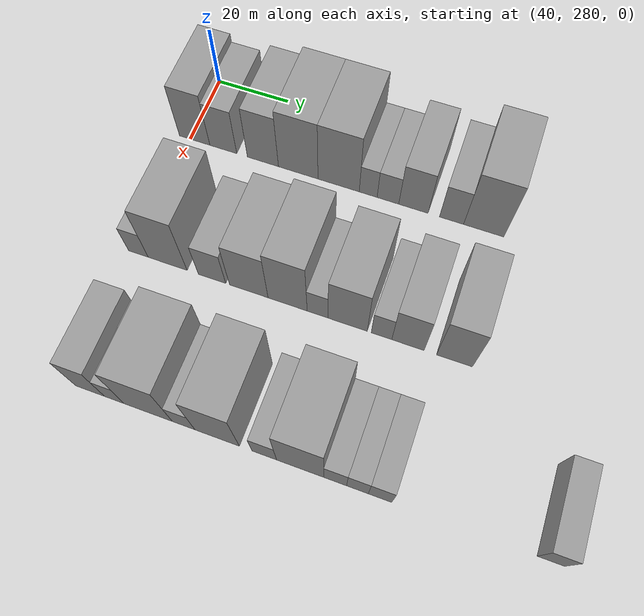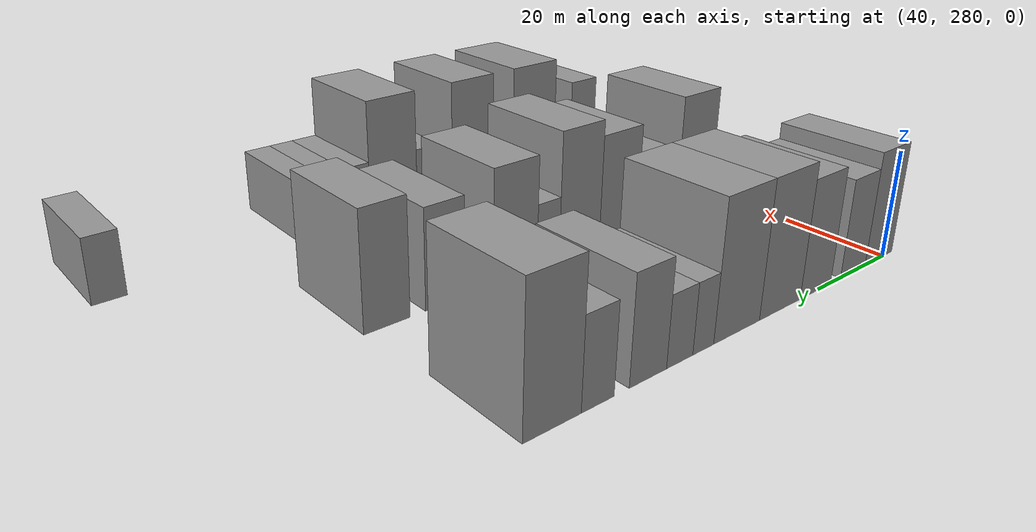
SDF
<sdf version="1.6">
 <world name="default">
  <model name="building_74">
   <static>1</static>
   <pose>50.0000 281.3821 0 0.000000 0.000000 0.000000</pose>
   <link name="link">
    <pose>0 0 10.50 0 0 0</pose>
    <collision name="collision"><geometry><box><size>20.0000 8.7251 21.0000</size></box></geometry></collision>
    <visual name="visual">
     <cast_shadows>0</cast_shadows>
     <geometry><box><size>20.0000 8.7251 21.0000</size></box></geometry>
     <material>
      <script>
       <uri>model://grey_wall/materials/scripts</uri>
       <uri>model://grey_wall/materials/textures</uri>
       <name>vrc/grey_wall</name>
      </script>
     </material>
    </visual>
   </link>
  </model>
  <model name="building_75">
   <static>1</static>
   <pose>50.0000 289.5670 0 0.000000 0.000000 0.000000</pose>
   <link name="link">
    <pose>0 0 9.00 0 0 0</pose>
    <collision name="collision"><geometry><box><size>20.0000 7.6448 18.0000</size></box></geometry></collision>
    <visual name="visual">
     <cast_shadows>0</cast_shadows>
     <geometry><box><size>20.0000 7.6448 18.0000</size></box></geometry>
     <material>
      <script>
       <uri>model://grey_wall/materials/scripts</uri>
       <uri>model://grey_wall/materials/textures</uri>
       <name>vrc/grey_wall</name>
      </script>
     </material>
    </visual>
   </link>
  </model>
  <model name="building_76">
   <static>1</static>
   <pose>50.0000 300.7373 0 0.000000 0.000000 0.000000</pose>
   <link name="link">
    <pose>0 0 10.50 0 0 0</pose>
    <collision name="collision"><geometry><box><size>20.0000 8.6957 21.0000</size></box></geometry></collision>
    <visual name="visual">
     <cast_shadows>0</cast_shadows>
     <geometry><box><size>20.0000 8.6957 21.0000</size></box></geometry>
     <material>
      <script>
       <uri>model://grey_wall/materials/scripts</uri>
       <uri>model://grey_wall/materials/textures</uri>
       <name>vrc/grey_wall</name>
      </script>
     </material>
    </visual>
   </link>
  </model>
  <model name="building_77">
   <static>1</static>
   <pose>50.0000 310.5409 0 0.000000 0.000000 0.000000</pose>
   <link name="link">
    <pose>0 0 12.00 0 0 0</pose>
    <collision name="collision"><geometry><box><size>20.0000 10.9115 24.0000</size></box></geometry></collision>
    <visual name="visual">
     <cast_shadows>0</cast_shadows>
     <geometry><box><size>20.0000 10.9115 24.0000</size></box></geometry>
     <material>
      <script>
       <uri>model://grey_wall/materials/scripts</uri>
       <uri>model://grey_wall/materials/textures</uri>
       <name>vrc/grey_wall</name>
      </script>
     </material>
    </visual>
   </link>
  </model>
  <model name="building_78">
   <static>1</static>
   <pose>50.0000 321.6092 0 0.000000 0.000000 0.000000</pose>
   <link name="link">
    <pose>0 0 12.00 0 0 0</pose>
    <collision name="collision"><geometry><box><size>20.0000 11.2251 24.0000</size></box></geometry></collision>
    <visual name="visual">
     <cast_shadows>0</cast_shadows>
     <geometry><box><size>20.0000 11.2251 24.0000</size></box></geometry>
     <material>
      <script>
       <uri>model://grey_wall/materials/scripts</uri>
       <uri>model://grey_wall/materials/textures</uri>
       <name>vrc/grey_wall</name>
      </script>
     </material>
    </visual>
   </link>
  </model>
  <model name="building_79">
   <static>1</static>
   <pose>50.0000 329.6249 0 0.000000 0.000000 0.000000</pose>
   <link name="link">
    <pose>0 0 6.00 0 0 0</pose>
    <collision name="collision"><geometry><box><size>20.0000 4.8063 12.0000</size></box></geometry></collision>
    <visual name="visual">
     <cast_shadows>0</cast_shadows>
     <geometry><box><size>20.0000 4.8063 12.0000</size></box></geometry>
     <material>
      <script>
       <uri>model://grey_wall/materials/scripts</uri>
       <uri>model://grey_wall/materials/textures</uri>
       <name>vrc/grey_wall</name>
      </script>
     </material>
    </visual>
   </link>
  </model>
  <model name="building_80">
   <static>1</static>
   <pose>50.0000 334.9151 0 0.000000 0.000000 0.000000</pose>
   <link name="link">
    <pose>0 0 6.00 0 0 0</pose>
    <collision name="collision"><geometry><box><size>20.0000 5.7741 12.0000</size></box></geometry></collision>
    <visual name="visual">
     <cast_shadows>0</cast_shadows>
     <geometry><box><size>20.0000 5.7741 12.0000</size></box></geometry>
     <material>
      <script>
       <uri>model://grey_wall/materials/scripts</uri>
       <uri>model://grey_wall/materials/textures</uri>
       <name>vrc/grey_wall</name>
      </script>
     </material>
    </visual>
   </link>
  </model>
  <model name="building_81">
   <static>1</static>
   <pose>50.0000 341.6799 0 0.000000 0.000000 0.000000</pose>
   <link name="link">
    <pose>0 0 9.00 0 0 0</pose>
    <collision name="collision"><geometry><box><size>20.0000 7.7554 18.0000</size></box></geometry></collision>
    <visual name="visual">
     <cast_shadows>0</cast_shadows>
     <geometry><box><size>20.0000 7.7554 18.0000</size></box></geometry>
     <material>
      <script>
       <uri>model://grey_wall/materials/scripts</uri>
       <uri>model://grey_wall/materials/textures</uri>
       <name>vrc/grey_wall</name>
      </script>
     </material>
    </visual>
   </link>
  </model>
  <model name="building_82">
   <static>1</static>
   <pose>50.0000 351.6924 0 0.000000 0.000000 0.000000</pose>
   <link name="link">
    <pose>0 0 7.50 0 0 0</pose>
    <collision name="collision"><geometry><box><size>20.0000 6.2697 15.0000</size></box></geometry></collision>
    <visual name="visual">
     <cast_shadows>0</cast_shadows>
     <geometry><box><size>20.0000 6.2697 15.0000</size></box></geometry>
     <material>
      <script>
       <uri>model://grey_wall/materials/scripts</uri>
       <uri>model://grey_wall/materials/textures</uri>
       <name>vrc/grey_wall</name>
      </script>
     </material>
    </visual>
   </link>
  </model>
  <model name="building_83">
   <static>1</static>
   <pose>50.0000 360.0272 0 0.000000 0.000000 0.000000</pose>
   <link name="link">
    <pose>0 0 12.00 0 0 0</pose>
    <collision name="collision"><geometry><box><size>20.0000 10.4000 24.0000</size></box></geometry></collision>
    <visual name="visual">
     <cast_shadows>0</cast_shadows>
     <geometry><box><size>20.0000 10.4000 24.0000</size></box></geometry>
     <material>
      <script>
       <uri>model://grey_wall/materials/scripts</uri>
       <uri>model://grey_wall/materials/textures</uri>
       <name>vrc/grey_wall</name>
      </script>
     </material>
    </visual>
   </link>
  </model>
  <model name="building_157">
   <static>1</static>
   <pose>85.0000 281.6886 0 0.000000 0.000000 0.000000</pose>
   <link name="link">
    <pose>0 0 6.00 0 0 0</pose>
    <collision name="collision"><geometry><box><size>20.0000 5.3297 12.0000</size></box></geometry></collision>
    <visual name="visual">
     <cast_shadows>0</cast_shadows>
     <geometry><box><size>20.0000 5.3297 12.0000</size></box></geometry>
     <material>
      <script>
       <uri>model://grey_wall/materials/scripts</uri>
       <uri>model://grey_wall/materials/textures</uri>
       <name>vrc/grey_wall</name>
      </script>
     </material>
    </visual>
   </link>
  </model>
  <model name="building_158">
   <static>1</static>
   <pose>85.0000 289.5676 0 0.000000 0.000000 0.000000</pose>
   <link name="link">
    <pose>0 0 12.00 0 0 0</pose>
    <collision name="collision"><geometry><box><size>20.0000 10.4283 24.0000</size></box></geometry></collision>
    <visual name="visual">
     <cast_shadows>0</cast_shadows>
     <geometry><box><size>20.0000 10.4283 24.0000</size></box></geometry>
     <material>
      <script>
       <uri>model://grey_wall/materials/scripts</uri>
       <uri>model://grey_wall/materials/textures</uri>
       <name>vrc/grey_wall</name>
      </script>
     </material>
    </visual>
   </link>
  </model>
  <model name="building_159">
   <static>1</static>
   <pose>85.0000 301.3899 0 0.000000 0.000000 0.000000</pose>
   <link name="link">
    <pose>0 0 7.50 0 0 0</pose>
    <collision name="collision"><geometry><box><size>20.0000 7.2164 15.0000</size></box></geometry></collision>
    <visual name="visual">
     <cast_shadows>0</cast_shadows>
     <geometry><box><size>20.0000 7.2164 15.0000</size></box></geometry>
     <material>
      <script>
       <uri>model://grey_wall/materials/scripts</uri>
       <uri>model://grey_wall/materials/textures</uri>
       <name>vrc/grey_wall</name>
      </script>
     </material>
    </visual>
   </link>
  </model>
  <model name="building_160">
   <static>1</static>
   <pose>85.0000 310.9939 0 0.000000 0.000000 0.000000</pose>
   <link name="link">
    <pose>0 0 10.50 0 0 0</pose>
    <collision name="collision"><geometry><box><size>20.0000 9.9916 21.0000</size></box></geometry></collision>
    <visual name="visual">
     <cast_shadows>0</cast_shadows>
     <geometry><box><size>20.0000 9.9916 21.0000</size></box></geometry>
     <material>
      <script>
       <uri>model://grey_wall/materials/scripts</uri>
       <uri>model://grey_wall/materials/textures</uri>
       <name>vrc/grey_wall</name>
      </script>
     </material>
    </visual>
   </link>
  </model>
  <model name="building_161">
   <static>1</static>
   <pose>85.0000 320.9890 0 0.000000 0.000000 0.000000</pose>
   <link name="link">
    <pose>0 0 12.00 0 0 0</pose>
    <collision name="collision"><geometry><box><size>20.0000 9.9985 24.0000</size></box></geometry></collision>
    <visual name="visual">
     <cast_shadows>0</cast_shadows>
     <geometry><box><size>20.0000 9.9985 24.0000</size></box></geometry>
     <material>
      <script>
       <uri>model://grey_wall/materials/scripts</uri>
       <uri>model://grey_wall/materials/textures</uri>
       <name>vrc/grey_wall</name>
      </script>
     </material>
    </visual>
   </link>
  </model>
  <model name="building_162">
   <static>1</static>
   <pose>85.0000 328.6164 0 0.000000 0.000000 0.000000</pose>
   <link name="link">
    <pose>0 0 6.00 0 0 0</pose>
    <collision name="collision"><geometry><box><size>20.0000 5.2562 12.0000</size></box></geometry></collision>
    <visual name="visual">
     <cast_shadows>0</cast_shadows>
     <geometry><box><size>20.0000 5.2562 12.0000</size></box></geometry>
     <material>
      <script>
       <uri>model://grey_wall/materials/scripts</uri>
       <uri>model://grey_wall/materials/textures</uri>
       <name>vrc/grey_wall</name>
      </script>
     </material>
    </visual>
   </link>
  </model>
  <model name="building_163">
   <static>1</static>
   <pose>85.0000 336.1527 0 0.000000 0.000000 0.000000</pose>
   <link name="link">
    <pose>0 0 10.50 0 0 0</pose>
    <collision name="collision"><geometry><box><size>20.0000 9.8165 21.0000</size></box></geometry></collision>
    <visual name="visual">
     <cast_shadows>0</cast_shadows>
     <geometry><box><size>20.0000 9.8165 21.0000</size></box></geometry>
     <material>
      <script>
       <uri>model://grey_wall/materials/scripts</uri>
       <uri>model://grey_wall/materials/textures</uri>
       <name>vrc/grey_wall</name>
      </script>
     </material>
    </visual>
   </link>
  </model>
  <model name="building_164">
   <static>1</static>
   <pose>85.0000 344.6006 0 0.000000 0.000000 0.000000</pose>
   <link name="link">
    <pose>0 0 6.00 0 0 0</pose>
    <collision name="collision"><geometry><box><size>20.0000 5.0793 12.0000</size></box></geometry></collision>
    <visual name="visual">
     <cast_shadows>0</cast_shadows>
     <geometry><box><size>20.0000 5.0793 12.0000</size></box></geometry>
     <material>
      <script>
       <uri>model://grey_wall/materials/scripts</uri>
       <uri>model://grey_wall/materials/textures</uri>
       <name>vrc/grey_wall</name>
      </script>
     </material>
    </visual>
   </link>
  </model>
  <model name="building_165">
   <static>1</static>
   <pose>85.0000 351.0897 0 0.000000 0.000000 0.000000</pose>
   <link name="link">
    <pose>0 0 9.00 0 0 0</pose>
    <collision name="collision"><geometry><box><size>20.0000 7.8988 18.0000</size></box></geometry></collision>
    <visual name="visual">
     <cast_shadows>0</cast_shadows>
     <geometry><box><size>20.0000 7.8988 18.0000</size></box></geometry>
     <material>
      <script>
       <uri>model://grey_wall/materials/scripts</uri>
       <uri>model://grey_wall/materials/textures</uri>
       <name>vrc/grey_wall</name>
      </script>
     </material>
    </visual>
   </link>
  </model>
  <model name="building_166">
   <static>1</static>
   <pose>85.0000 362.3575 0 0.000000 0.000000 0.000000</pose>
   <link name="link">
    <pose>0 0 10.50 0 0 0</pose>
    <collision name="collision"><geometry><box><size>20.0000 8.6369 21.0000</size></box></geometry></collision>
    <visual name="visual">
     <cast_shadows>0</cast_shadows>
     <geometry><box><size>20.0000 8.6369 21.0000</size></box></geometry>
     <material>
      <script>
       <uri>model://grey_wall/materials/scripts</uri>
       <uri>model://grey_wall/materials/textures</uri>
       <name>vrc/grey_wall</name>
      </script>
     </material>
    </visual>
   </link>
  </model>
  <model name="building_231">
   <static>1</static>
   <pose>120.0000 286.2649 0 0.000000 0.000000 0.000000</pose>
   <link name="link">
    <pose>0 0 9.00 0 0 0</pose>
    <collision name="collision"><geometry><box><size>20.0000 7.3339 18.0000</size></box></geometry></collision>
    <visual name="visual">
     <cast_shadows>0</cast_shadows>
     <geometry><box><size>20.0000 7.3339 18.0000</size></box></geometry>
     <material>
      <script>
       <uri>model://grey_wall/materials/scripts</uri>
       <uri>model://grey_wall/materials/textures</uri>
       <name>vrc/grey_wall</name>
      </script>
     </material>
    </visual>
   </link>
  </model>
  <model name="building_232">
   <static>1</static>
   <pose>120.0000 292.3833 0 0.000000 0.000000 0.000000</pose>
   <link name="link">
    <pose>0 0 6.00 0 0 0</pose>
    <collision name="collision"><geometry><box><size>20.0000 4.9029 12.0000</size></box></geometry></collision>
    <visual name="visual">
     <cast_shadows>0</cast_shadows>
     <geometry><box><size>20.0000 4.9029 12.0000</size></box></geometry>
     <material>
      <script>
       <uri>model://grey_wall/materials/scripts</uri>
       <uri>model://grey_wall/materials/textures</uri>
       <name>vrc/grey_wall</name>
      </script>
     </material>
    </visual>
   </link>
  </model>
  <model name="building_233">
   <static>1</static>
   <pose>120.0000 300.8085 0 0.000000 0.000000 0.000000</pose>
   <link name="link">
    <pose>0 0 12.00 0 0 0</pose>
    <collision name="collision"><geometry><box><size>20.0000 11.9475 24.0000</size></box></geometry></collision>
    <visual name="visual">
     <cast_shadows>0</cast_shadows>
     <geometry><box><size>20.0000 11.9475 24.0000</size></box></geometry>
     <material>
      <script>
       <uri>model://grey_wall/materials/scripts</uri>
       <uri>model://grey_wall/materials/textures</uri>
       <name>vrc/grey_wall</name>
      </script>
     </material>
    </visual>
   </link>
  </model>
  <model name="building_234">
   <static>1</static>
   <pose>120.0000 309.5346 0 0.000000 0.000000 0.000000</pose>
   <link name="link">
    <pose>0 0 6.00 0 0 0</pose>
    <collision name="collision"><geometry><box><size>20.0000 5.5045 12.0000</size></box></geometry></collision>
    <visual name="visual">
     <cast_shadows>0</cast_shadows>
     <geometry><box><size>20.0000 5.5045 12.0000</size></box></geometry>
     <material>
      <script>
       <uri>model://grey_wall/materials/scripts</uri>
       <uri>model://grey_wall/materials/textures</uri>
       <name>vrc/grey_wall</name>
      </script>
     </material>
    </visual>
   </link>
  </model>
  <model name="building_235">
   <static>1</static>
   <pose>120.0000 317.6421 0 0.000000 0.000000 0.000000</pose>
   <link name="link">
    <pose>0 0 12.00 0 0 0</pose>
    <collision name="collision"><geometry><box><size>20.0000 10.7106 24.0000</size></box></geometry></collision>
    <visual name="visual">
     <cast_shadows>0</cast_shadows>
     <geometry><box><size>20.0000 10.7106 24.0000</size></box></geometry>
     <material>
      <script>
       <uri>model://grey_wall/materials/scripts</uri>
       <uri>model://grey_wall/materials/textures</uri>
       <name>vrc/grey_wall</name>
      </script>
     </material>
    </visual>
   </link>
  </model>
  <model name="building_236">
   <static>1</static>
   <pose>120.0000 328.8988 0 0.000000 0.000000 0.000000</pose>
   <link name="link">
    <pose>0 0 6.00 0 0 0</pose>
    <collision name="collision"><geometry><box><size>20.0000 5.8028 12.0000</size></box></geometry></collision>
    <visual name="visual">
     <cast_shadows>0</cast_shadows>
     <geometry><box><size>20.0000 5.8028 12.0000</size></box></geometry>
     <material>
      <script>
       <uri>model://grey_wall/materials/scripts</uri>
       <uri>model://grey_wall/materials/textures</uri>
       <name>vrc/grey_wall</name>
      </script>
     </material>
    </visual>
   </link>
  </model>
  <model name="building_237">
   <static>1</static>
   <pose>120.0000 337.2868 0 0.000000 0.000000 0.000000</pose>
   <link name="link">
    <pose>0 0 12.00 0 0 0</pose>
    <collision name="collision"><geometry><box><size>20.0000 10.9732 24.0000</size></box></geometry></collision>
    <visual name="visual">
     <cast_shadows>0</cast_shadows>
     <geometry><box><size>20.0000 10.9732 24.0000</size></box></geometry>
     <material>
      <script>
       <uri>model://grey_wall/materials/scripts</uri>
       <uri>model://grey_wall/materials/textures</uri>
       <name>vrc/grey_wall</name>
      </script>
     </material>
    </visual>
   </link>
  </model>
  <model name="building_238">
   <static>1</static>
   <pose>120.0000 345.4153 0 0.000000 0.000000 0.000000</pose>
   <link name="link">
    <pose>0 0 6.00 0 0 0</pose>
    <collision name="collision"><geometry><box><size>20.0000 5.2839 12.0000</size></box></geometry></collision>
    <visual name="visual">
     <cast_shadows>0</cast_shadows>
     <geometry><box><size>20.0000 5.2839 12.0000</size></box></geometry>
     <material>
      <script>
       <uri>model://grey_wall/materials/scripts</uri>
       <uri>model://grey_wall/materials/textures</uri>
       <name>vrc/grey_wall</name>
      </script>
     </material>
    </visual>
   </link>
  </model>
  <model name="building_239">
   <static>1</static>
   <pose>120.0000 350.5211 0 0.000000 0.000000 0.000000</pose>
   <link name="link">
    <pose>0 0 6.00 0 0 0</pose>
    <collision name="collision"><geometry><box><size>20.0000 4.9276 12.0000</size></box></geometry></collision>
    <visual name="visual">
     <cast_shadows>0</cast_shadows>
     <geometry><box><size>20.0000 4.9276 12.0000</size></box></geometry>
     <material>
      <script>
       <uri>model://grey_wall/materials/scripts</uri>
       <uri>model://grey_wall/materials/textures</uri>
       <name>vrc/grey_wall</name>
      </script>
     </material>
    </visual>
   </link>
  </model>
  <model name="building_240">
   <static>1</static>
   <pose>120.0000 355.6497 0 0.000000 0.000000 0.000000</pose>
   <link name="link">
    <pose>0 0 6.00 0 0 0</pose>
    <collision name="collision"><geometry><box><size>20.0000 5.3296 12.0000</size></box></geometry></collision>
    <visual name="visual">
     <cast_shadows>0</cast_shadows>
     <geometry><box><size>20.0000 5.3296 12.0000</size></box></geometry>
     <material>
      <script>
       <uri>model://grey_wall/materials/scripts</uri>
       <uri>model://grey_wall/materials/textures</uri>
       <name>vrc/grey_wall</name>
      </script>
     </material>
    </visual>
   </link>
  </model>
  <model name="building_241">
   <static>1</static>
   <pose>120.0000 393.1172 0 0.000000 0.000000 0.000000</pose>
   <link name="link">
    <pose>0 0 6.00 0 0 0</pose>
    <collision name="collision"><geometry><box><size>20.0000 5.8684 12.0000</size></box></geometry></collision>
    <visual name="visual">
     <cast_shadows>0</cast_shadows>
     <geometry><box><size>20.0000 5.8684 12.0000</size></box></geometry>
     <material>
      <script>
       <uri>model://grey_wall/materials/scripts</uri>
       <uri>model://grey_wall/materials/textures</uri>
       <name>vrc/grey_wall</name>
      </script>
     </material>
    </visual>
   </link>
  </model>
 </world>
</sdf>
